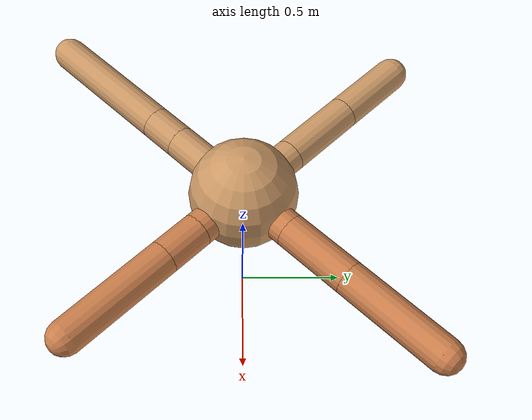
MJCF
<mujoco model="ant">
  <compiler angle="degree" coordinate="local" inertiafromgeom="true" />
  <option integrator="RK4" timestep="0.01" />
  <custom>
    <numeric data="0.0 0.0 0.55 1.0 0.0 0.0 0.0 0.0 1.0 0.0 -1.0 0.0 -1.0 0.0 1.0" name="init_qpos" />
  </custom>
  <default>
    <joint armature="1" damping="1" limited="true" />
    <geom conaffinity="0" condim="3" density="5.0" friction="1.5 0.1 0.1" margin="0.01" rgba="0.8 0.6 0.4 1" />
  </default>
  <worldbody>
    <body name="torso" pos="0 0 0.75">
      <geom name="torso_geom" pos="0 0 0" size="0.25" type="sphere" />

      <body name="front_left_leg" pos="0 0 0">
        <geom fromto="0.0 0.0 0.0 0.20329940581644151 0.20329940581644151 0.0" name="aux_1_geom" size="0.08" type="capsule" rgba=".8 .5 .3 1" />
        <body name="aux_1" pos="0.20329940581644151 0.20329940581644151 0.0">
          <joint axis="0 0 1" name="hip_1" pos="0.0 0.0 0.0" range="-40 40" type="hinge" />
          <geom fromto="0.0 0.0 0.0 0.24059628811398906 0.24059628811398906 0.0" name="left_leg_geom" size="0.08" type="capsule" rgba=".8 .5 .3 1" />
          <body pos="0.24059628811398906 0.24059628811398906 0.0" name="front_left_foot">
            <joint axis="-1 1 0" name="ankle_1" pos="0.0 0.0 0.0" range="30 100" type="hinge" />
            <geom fromto="0.0 0.0 0.0 0.36017484466221517 0.36017484466221517 0.0" name="left_ankle_geom" size="0.08" type="capsule" rgba=".8 .5 .3 1" />
          </body>
        </body>
      </body>
      <body name="front_right_leg" pos="0 0 0">
        <geom fromto="0.0 0.0 0.0 -0.21913902067585297 0.21913902067585297 0.0" name="aux_2_geom" size="0.08" type="capsule" />
        <body name="aux_2" pos="-0.21913902067585297 0.21913902067585297 0.0">
          <joint axis="0 0 1" name="hip_2" pos="0.0 0.0 0.0" range="-40 40" type="hinge" />
          <geom fromto="0.0 0.0 0.0 -0.2634678190081082 0.2634678190081082 0.0" name="right_leg_geom" size="0.08" type="capsule" />
          <body pos="-0.2634678190081082 0.2634678190081082 0.0" name="front_right_foot">
            <joint axis="1 1 0" name="ankle_2" pos="0.0 0.0 0.0" range="-100 -30" type="hinge" />
            <geom fromto="0.0 0.0 0.0 -0.25747464954334326 0.25747464954334326 0.0" name="right_ankle_geom" size="0.08" type="capsule" />
          </body>
        </body>
      </body>
      <body name="left_back_leg" pos="0 0 0">
        <geom fromto="0.0 0.0 0.0 -0.2976416062555957 -0.2976416062555957 0.0" name="aux_3_geom" size="0.08" type="capsule" />
        <body name="aux_3" pos="-0.2976416062555957 -0.2976416062555957 0.0">
          <joint axis="0 0 1" name="hip_3" pos="0.0 0.0 0.0" range="-40 40" type="hinge" />
          <geom fromto="0.0 0.0 0.0 -0.12071243985415153 -0.12071243985415153 0.0" name="back_leg_geom" size="0.08" type="capsule" />
          <body pos="-0.12071243985415153 -0.12071243985415153 0.0" name="left_back_foot">
            <joint axis="-1 1 0" name="ankle_3" pos="0.0 0.0 0.0" range="-100 -30" type="hinge" />
            <geom fromto="0.0 0.0 0.0 -0.4630433789946484 -0.4630433789946484 0.0" name="third_ankle_geom" size="0.08" type="capsule" />
          </body>
        </body>
      </body>
      <body name="right_back_leg" pos="0 0 0">
        <geom fromto="0.0 0.0 0.0 0.2017707397377005 -0.2017707397377005 0.0" name="aux_4_geom" size="0.08" type="capsule" rgba=".8 .5 .3 1" />
        <body name="aux_4" pos="0.2017707397377005 -0.2017707397377005 0.0">
          <joint axis="0 0 1" name="hip_4" pos="0.0 0.0 0.0" range="-40 40" type="hinge" />
          <geom fromto="0.0 0.0 0.0 0.14058490516250763 -0.14058490516250763 0.0" name="rightback_leg_geom" size="0.08" type="capsule" rgba=".8 .5 .3 1" />
          <body pos="0.14058490516250763 -0.14058490516250763 0.0" name="right_back_foot">
            <joint axis="1 1 0" name="ankle_4" pos="0.0 0.0 0.0" range="30 100" type="hinge" />
            <geom fromto="0.0 0.0 0.0 0.3838270780199505 -0.3838270780199505 0.0" name="fourth_ankle_geom" size="0.08" type="capsule" rgba=".8 .5 .3 1" />
          </body>
        </body>
      </body>
    </body>
  </worldbody>
  <actuator>
    <motor ctrllimited="true" ctrlrange="-1.0 1.0" joint="hip_4" gear="150" />
    <motor ctrllimited="true" ctrlrange="-1.0 1.0" joint="ankle_4" gear="150" />
    <motor ctrllimited="true" ctrlrange="-1.0 1.0" joint="hip_1" gear="150" />
    <motor ctrllimited="true" ctrlrange="-1.0 1.0" joint="ankle_1" gear="150" />
    <motor ctrllimited="true" ctrlrange="-1.0 1.0" joint="hip_2" gear="150" />
    <motor ctrllimited="true" ctrlrange="-1.0 1.0" joint="ankle_2" gear="150" />
    <motor ctrllimited="true" ctrlrange="-1.0 1.0" joint="hip_3" gear="150" />
    <motor ctrllimited="true" ctrlrange="-1.0 1.0" joint="ankle_3" gear="150" />
  </actuator>
</mujoco>
